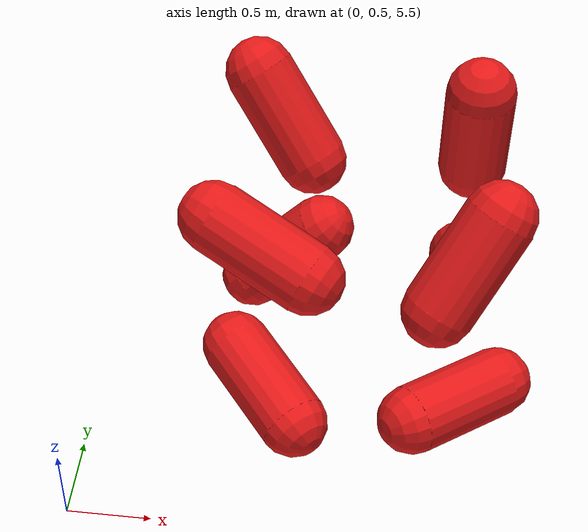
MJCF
<mujoco model="Humanoid and 100 objects">
    <compiler angle="degree"/>

    <option timestep="0.01" iterations="50" solver="PGS" jacobian="sparse" cone="elliptic" tolerance="1e-10"/>

    <size njmax="5000" nconmax="2000" nstack="1000000000"/>

    <default>
        <geom solimp=".9 .9 .01"/>

        <default class="object5">
			<geom type="capsule" material="geom" rgba=".9 .1 .1 1" size="0.200000 0.300000"/>
        </default>
    </default>

    <asset>
        <texture type="skybox" builtin="gradient" width="128" height="128" rgb1=".4 .6 .8" rgb2="0 0 0"/>
        <texture name="texgeom" type="cube" builtin="flat" mark="cross" width="128" height="128"
            rgb1="0.6 0.6 0.6" rgb2="0.6 0.6 0.6" markrgb="1 1 1"/>
        <texture name="texplane" type="2d" builtin="checker" rgb1=".4 .4 .4" rgb2=".6 .6 .6"
            width="512" height="512"/>
        <material name='geom' texture="texgeom" texuniform="true"/>
        <material name='MatPlane' reflectance='0.3' texture="texplane" texrepeat="1 1" texuniform="true"/>
    </asset>

    <visual>
        <quality shadowsize="4096" offsamples="8"/>
        <map znear="0.1" force="0.05"/>
    </visual>

    <statistic extent="4"/>

    <worldbody>
        <light directional="true" diffuse=".8 .8 .8" pos="0 0 10" dir="0 0 -10"/>

        <geom pos="0 0 0" type="plane" size="3 3 .5" rgba=".7 .7 .7 1" material="MatPlane"/>
		<body pos="1.100030 1.100555 6.100534" quat="0.580167 -0.625205 0.006010 0.522005"> <freejoint/> <geom class="object5"/> </body>
		<body pos="1.100054 1.100284 7.200447" quat="0.263428 -0.532373 0.612796 -0.521215"> <freejoint/> <geom class="object5"/> </body>
		<body pos="1.100392 2.200347 6.100290" quat="0.295147 0.678207 -0.623027 -0.254482"> <freejoint/> <geom class="object5"/> </body>
		<body pos="1.100913 2.200056 7.200923" quat="-0.627603 0.365414 0.046031 -0.685907"> <freejoint/> <geom class="object5"/> </body>
		<body pos="2.200901 1.100065 6.100307" quat="0.595869 -0.674762 0.272919 -0.339339"> <freejoint/> <geom class="object5"/> </body>
		<body pos="2.200176 1.100711 7.200390" quat="-0.754086 0.351217 -0.057115 0.552032"> <freejoint/> <geom class="object5"/> </body>
		<body pos="2.200480 2.200128 6.100816" quat="-0.657063 -0.367842 -0.351305 0.556368"> <freejoint/> <geom class="object5"/> </body>
		<body pos="2.200499 2.200353 7.200919" quat="-0.042367 0.005436 -0.062921 0.997104"> <freejoint/> <geom class="object5"/> </body>

    </worldbody>
</mujoco>
